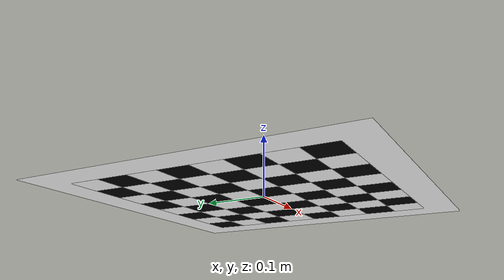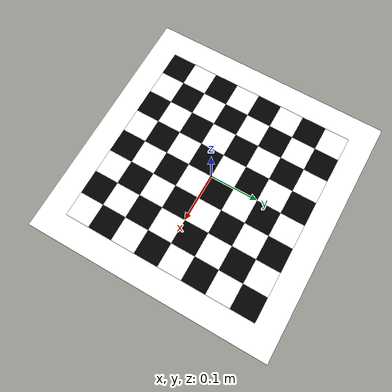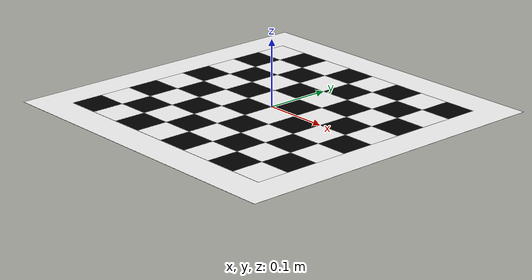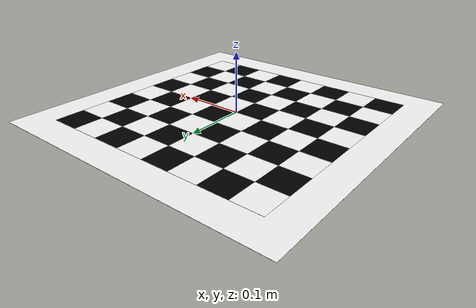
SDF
<?xml version="1.0"?>
<sdf version="1.4">
  <model name="checkerboard_8_8_0_05">
  <static>true</static>
  <link name="checkerboard_8_8_0_05_body">
      <visual name="checker_0_0">
        <pose>-0.17500000000000002 -0.17500000000000002 0 0 0 0</pose>
        <geometry>
          <box>
            <size>0.05 0.05 0.0002</size>
          </box>
        </geometry>
        <material>
          <ambient>0 0 0 1</ambient>
          <diffuse>0 0 0 1</diffuse>
          <specular>0 0 0 1</specular>
          <emissive>0 0 0 1</emissive>
        </material>
      </visual>
      <visual name="checker_0_1">
        <pose>-0.17500000000000002 -0.125 0 0 0 0</pose>
        <geometry>
          <box>
            <size>0.05 0.05 0.0002</size>
          </box>
        </geometry>
        <material>
          <ambient>1 1 1 1</ambient>
          <diffuse>1 1 1 1</diffuse>
          <specular>1 1 1 1</specular>
          <emissive>1 1 1 1</emissive>
        </material>
      </visual>
      <visual name="checker_0_2">
        <pose>-0.17500000000000002 -0.07500000000000001 0 0 0 0</pose>
        <geometry>
          <box>
            <size>0.05 0.05 0.0002</size>
          </box>
        </geometry>
        <material>
          <ambient>0 0 0 1</ambient>
          <diffuse>0 0 0 1</diffuse>
          <specular>0 0 0 1</specular>
          <emissive>0 0 0 1</emissive>
        </material>
      </visual>
      <visual name="checker_0_3">
        <pose>-0.17500000000000002 -0.024999999999999994 0 0 0 0</pose>
        <geometry>
          <box>
            <size>0.05 0.05 0.0002</size>
          </box>
        </geometry>
        <material>
          <ambient>1 1 1 1</ambient>
          <diffuse>1 1 1 1</diffuse>
          <specular>1 1 1 1</specular>
          <emissive>1 1 1 1</emissive>
        </material>
      </visual>
      <visual name="checker_0_4">
        <pose>-0.17500000000000002 0.024999999999999994 0 0 0 0</pose>
        <geometry>
          <box>
            <size>0.05 0.05 0.0002</size>
          </box>
        </geometry>
        <material>
          <ambient>0 0 0 1</ambient>
          <diffuse>0 0 0 1</diffuse>
          <specular>0 0 0 1</specular>
          <emissive>0 0 0 1</emissive>
        </material>
      </visual>
      <visual name="checker_0_5">
        <pose>-0.17500000000000002 0.07500000000000001 0 0 0 0</pose>
        <geometry>
          <box>
            <size>0.05 0.05 0.0002</size>
          </box>
        </geometry>
        <material>
          <ambient>1 1 1 1</ambient>
          <diffuse>1 1 1 1</diffuse>
          <specular>1 1 1 1</specular>
          <emissive>1 1 1 1</emissive>
        </material>
      </visual>
      <visual name="checker_0_6">
        <pose>-0.17500000000000002 0.12500000000000006 0 0 0 0</pose>
        <geometry>
          <box>
            <size>0.05 0.05 0.0002</size>
          </box>
        </geometry>
        <material>
          <ambient>0 0 0 1</ambient>
          <diffuse>0 0 0 1</diffuse>
          <specular>0 0 0 1</specular>
          <emissive>0 0 0 1</emissive>
        </material>
      </visual>
      <visual name="checker_0_7">
        <pose>-0.17500000000000002 0.17500000000000004 0 0 0 0</pose>
        <geometry>
          <box>
            <size>0.05 0.05 0.0002</size>
          </box>
        </geometry>
        <material>
          <ambient>1 1 1 1</ambient>
          <diffuse>1 1 1 1</diffuse>
          <specular>1 1 1 1</specular>
          <emissive>1 1 1 1</emissive>
        </material>
      </visual>
      <visual name="checker_1_0">
        <pose>-0.125 -0.17500000000000002 0 0 0 0</pose>
        <geometry>
          <box>
            <size>0.05 0.05 0.0002</size>
          </box>
        </geometry>
        <material>
          <ambient>1 1 1 1</ambient>
          <diffuse>1 1 1 1</diffuse>
          <specular>1 1 1 1</specular>
          <emissive>1 1 1 1</emissive>
        </material>
      </visual>
      <visual name="checker_1_1">
        <pose>-0.125 -0.125 0 0 0 0</pose>
        <geometry>
          <box>
            <size>0.05 0.05 0.0002</size>
          </box>
        </geometry>
        <material>
          <ambient>0 0 0 1</ambient>
          <diffuse>0 0 0 1</diffuse>
          <specular>0 0 0 1</specular>
          <emissive>0 0 0 1</emissive>
        </material>
      </visual>
      <visual name="checker_1_2">
        <pose>-0.125 -0.07500000000000001 0 0 0 0</pose>
        <geometry>
          <box>
            <size>0.05 0.05 0.0002</size>
          </box>
        </geometry>
        <material>
          <ambient>1 1 1 1</ambient>
          <diffuse>1 1 1 1</diffuse>
          <specular>1 1 1 1</specular>
          <emissive>1 1 1 1</emissive>
        </material>
      </visual>
      <visual name="checker_1_3">
        <pose>-0.125 -0.024999999999999994 0 0 0 0</pose>
        <geometry>
          <box>
            <size>0.05 0.05 0.0002</size>
          </box>
        </geometry>
        <material>
          <ambient>0 0 0 1</ambient>
          <diffuse>0 0 0 1</diffuse>
          <specular>0 0 0 1</specular>
          <emissive>0 0 0 1</emissive>
        </material>
      </visual>
      <visual name="checker_1_4">
        <pose>-0.125 0.024999999999999994 0 0 0 0</pose>
        <geometry>
          <box>
            <size>0.05 0.05 0.0002</size>
          </box>
        </geometry>
        <material>
          <ambient>1 1 1 1</ambient>
          <diffuse>1 1 1 1</diffuse>
          <specular>1 1 1 1</specular>
          <emissive>1 1 1 1</emissive>
        </material>
      </visual>
      <visual name="checker_1_5">
        <pose>-0.125 0.07500000000000001 0 0 0 0</pose>
        <geometry>
          <box>
            <size>0.05 0.05 0.0002</size>
          </box>
        </geometry>
        <material>
          <ambient>0 0 0 1</ambient>
          <diffuse>0 0 0 1</diffuse>
          <specular>0 0 0 1</specular>
          <emissive>0 0 0 1</emissive>
        </material>
      </visual>
      <visual name="checker_1_6">
        <pose>-0.125 0.12500000000000006 0 0 0 0</pose>
        <geometry>
          <box>
            <size>0.05 0.05 0.0002</size>
          </box>
        </geometry>
        <material>
          <ambient>1 1 1 1</ambient>
          <diffuse>1 1 1 1</diffuse>
          <specular>1 1 1 1</specular>
          <emissive>1 1 1 1</emissive>
        </material>
      </visual>
      <visual name="checker_1_7">
        <pose>-0.125 0.17500000000000004 0 0 0 0</pose>
        <geometry>
          <box>
            <size>0.05 0.05 0.0002</size>
          </box>
        </geometry>
        <material>
          <ambient>0 0 0 1</ambient>
          <diffuse>0 0 0 1</diffuse>
          <specular>0 0 0 1</specular>
          <emissive>0 0 0 1</emissive>
        </material>
      </visual>
      <visual name="checker_2_0">
        <pose>-0.07500000000000001 -0.17500000000000002 0 0 0 0</pose>
        <geometry>
          <box>
            <size>0.05 0.05 0.0002</size>
          </box>
        </geometry>
        <material>
          <ambient>0 0 0 1</ambient>
          <diffuse>0 0 0 1</diffuse>
          <specular>0 0 0 1</specular>
          <emissive>0 0 0 1</emissive>
        </material>
      </visual>
      <visual name="checker_2_1">
        <pose>-0.07500000000000001 -0.125 0 0 0 0</pose>
        <geometry>
          <box>
            <size>0.05 0.05 0.0002</size>
          </box>
        </geometry>
        <material>
          <ambient>1 1 1 1</ambient>
          <diffuse>1 1 1 1</diffuse>
          <specular>1 1 1 1</specular>
          <emissive>1 1 1 1</emissive>
        </material>
      </visual>
      <visual name="checker_2_2">
        <pose>-0.07500000000000001 -0.07500000000000001 0 0 0 0</pose>
        <geometry>
          <box>
            <size>0.05 0.05 0.0002</size>
          </box>
        </geometry>
        <material>
          <ambient>0 0 0 1</ambient>
          <diffuse>0 0 0 1</diffuse>
          <specular>0 0 0 1</specular>
          <emissive>0 0 0 1</emissive>
        </material>
      </visual>
      <visual name="checker_2_3">
        <pose>-0.07500000000000001 -0.024999999999999994 0 0 0 0</pose>
        <geometry>
          <box>
            <size>0.05 0.05 0.0002</size>
          </box>
        </geometry>
        <material>
          <ambient>1 1 1 1</ambient>
          <diffuse>1 1 1 1</diffuse>
          <specular>1 1 1 1</specular>
          <emissive>1 1 1 1</emissive>
        </material>
      </visual>
      <visual name="checker_2_4">
        <pose>-0.07500000000000001 0.024999999999999994 0 0 0 0</pose>
        <geometry>
          <box>
            <size>0.05 0.05 0.0002</size>
          </box>
        </geometry>
        <material>
          <ambient>0 0 0 1</ambient>
          <diffuse>0 0 0 1</diffuse>
          <specular>0 0 0 1</specular>
          <emissive>0 0 0 1</emissive>
        </material>
      </visual>
      <visual name="checker_2_5">
        <pose>-0.07500000000000001 0.07500000000000001 0 0 0 0</pose>
        <geometry>
          <box>
            <size>0.05 0.05 0.0002</size>
          </box>
        </geometry>
        <material>
          <ambient>1 1 1 1</ambient>
          <diffuse>1 1 1 1</diffuse>
          <specular>1 1 1 1</specular>
          <emissive>1 1 1 1</emissive>
        </material>
      </visual>
      <visual name="checker_2_6">
        <pose>-0.07500000000000001 0.12500000000000006 0 0 0 0</pose>
        <geometry>
          <box>
            <size>0.05 0.05 0.0002</size>
          </box>
        </geometry>
        <material>
          <ambient>0 0 0 1</ambient>
          <diffuse>0 0 0 1</diffuse>
          <specular>0 0 0 1</specular>
          <emissive>0 0 0 1</emissive>
        </material>
      </visual>
      <visual name="checker_2_7">
        <pose>-0.07500000000000001 0.17500000000000004 0 0 0 0</pose>
        <geometry>
          <box>
            <size>0.05 0.05 0.0002</size>
          </box>
        </geometry>
        <material>
          <ambient>1 1 1 1</ambient>
          <diffuse>1 1 1 1</diffuse>
          <specular>1 1 1 1</specular>
          <emissive>1 1 1 1</emissive>
        </material>
      </visual>
      <visual name="checker_3_0">
        <pose>-0.024999999999999994 -0.17500000000000002 0 0 0 0</pose>
        <geometry>
          <box>
            <size>0.05 0.05 0.0002</size>
          </box>
        </geometry>
        <material>
          <ambient>1 1 1 1</ambient>
          <diffuse>1 1 1 1</diffuse>
          <specular>1 1 1 1</specular>
          <emissive>1 1 1 1</emissive>
        </material>
      </visual>
      <visual name="checker_3_1">
        <pose>-0.024999999999999994 -0.125 0 0 0 0</pose>
        <geometry>
          <box>
            <size>0.05 0.05 0.0002</size>
          </box>
        </geometry>
        <material>
          <ambient>0 0 0 1</ambient>
          <diffuse>0 0 0 1</diffuse>
          <specular>0 0 0 1</specular>
          <emissive>0 0 0 1</emissive>
        </material>
      </visual>
      <visual name="checker_3_2">
        <pose>-0.024999999999999994 -0.07500000000000001 0 0 0 0</pose>
        <geometry>
          <box>
            <size>0.05 0.05 0.0002</size>
          </box>
        </geometry>
        <material>
          <ambient>1 1 1 1</ambient>
          <diffuse>1 1 1 1</diffuse>
          <specular>1 1 1 1</specular>
          <emissive>1 1 1 1</emissive>
        </material>
      </visual>
      <visual name="checker_3_3">
        <pose>-0.024999999999999994 -0.024999999999999994 0 0 0 0</pose>
        <geometry>
          <box>
            <size>0.05 0.05 0.0002</size>
          </box>
        </geometry>
        <material>
          <ambient>0 0 0 1</ambient>
          <diffuse>0 0 0 1</diffuse>
          <specular>0 0 0 1</specular>
          <emissive>0 0 0 1</emissive>
        </material>
      </visual>
      <visual name="checker_3_4">
        <pose>-0.024999999999999994 0.024999999999999994 0 0 0 0</pose>
        <geometry>
          <box>
            <size>0.05 0.05 0.0002</size>
          </box>
        </geometry>
        <material>
          <ambient>1 1 1 1</ambient>
          <diffuse>1 1 1 1</diffuse>
          <specular>1 1 1 1</specular>
          <emissive>1 1 1 1</emissive>
        </material>
      </visual>
      <visual name="checker_3_5">
        <pose>-0.024999999999999994 0.07500000000000001 0 0 0 0</pose>
        <geometry>
          <box>
            <size>0.05 0.05 0.0002</size>
          </box>
        </geometry>
        <material>
          <ambient>0 0 0 1</ambient>
          <diffuse>0 0 0 1</diffuse>
          <specular>0 0 0 1</specular>
          <emissive>0 0 0 1</emissive>
        </material>
      </visual>
      <visual name="checker_3_6">
        <pose>-0.024999999999999994 0.12500000000000006 0 0 0 0</pose>
        <geometry>
          <box>
            <size>0.05 0.05 0.0002</size>
          </box>
        </geometry>
        <material>
          <ambient>1 1 1 1</ambient>
          <diffuse>1 1 1 1</diffuse>
          <specular>1 1 1 1</specular>
          <emissive>1 1 1 1</emissive>
        </material>
      </visual>
      <visual name="checker_3_7">
        <pose>-0.024999999999999994 0.17500000000000004 0 0 0 0</pose>
        <geometry>
          <box>
            <size>0.05 0.05 0.0002</size>
          </box>
        </geometry>
        <material>
          <ambient>0 0 0 1</ambient>
          <diffuse>0 0 0 1</diffuse>
          <specular>0 0 0 1</specular>
          <emissive>0 0 0 1</emissive>
        </material>
      </visual>
      <visual name="checker_4_0">
        <pose>0.024999999999999994 -0.17500000000000002 0 0 0 0</pose>
        <geometry>
          <box>
            <size>0.05 0.05 0.0002</size>
          </box>
        </geometry>
        <material>
          <ambient>0 0 0 1</ambient>
          <diffuse>0 0 0 1</diffuse>
          <specular>0 0 0 1</specular>
          <emissive>0 0 0 1</emissive>
        </material>
      </visual>
      <visual name="checker_4_1">
        <pose>0.024999999999999994 -0.125 0 0 0 0</pose>
        <geometry>
          <box>
            <size>0.05 0.05 0.0002</size>
          </box>
        </geometry>
        <material>
          <ambient>1 1 1 1</ambient>
          <diffuse>1 1 1 1</diffuse>
          <specular>1 1 1 1</specular>
          <emissive>1 1 1 1</emissive>
        </material>
      </visual>
      <visual name="checker_4_2">
        <pose>0.024999999999999994 -0.07500000000000001 0 0 0 0</pose>
        <geometry>
          <box>
            <size>0.05 0.05 0.0002</size>
          </box>
        </geometry>
        <material>
          <ambient>0 0 0 1</ambient>
          <diffuse>0 0 0 1</diffuse>
          <specular>0 0 0 1</specular>
          <emissive>0 0 0 1</emissive>
        </material>
      </visual>
      <visual name="checker_4_3">
        <pose>0.024999999999999994 -0.024999999999999994 0 0 0 0</pose>
        <geometry>
          <box>
            <size>0.05 0.05 0.0002</size>
          </box>
        </geometry>
        <material>
          <ambient>1 1 1 1</ambient>
          <diffuse>1 1 1 1</diffuse>
          <specular>1 1 1 1</specular>
          <emissive>1 1 1 1</emissive>
        </material>
      </visual>
      <visual name="checker_4_4">
        <pose>0.024999999999999994 0.024999999999999994 0 0 0 0</pose>
        <geometry>
          <box>
            <size>0.05 0.05 0.0002</size>
          </box>
        </geometry>
        <material>
          <ambient>0 0 0 1</ambient>
          <diffuse>0 0 0 1</diffuse>
          <specular>0 0 0 1</specular>
          <emissive>0 0 0 1</emissive>
        </material>
      </visual>
      <visual name="checker_4_5">
        <pose>0.024999999999999994 0.07500000000000001 0 0 0 0</pose>
        <geometry>
          <box>
            <size>0.05 0.05 0.0002</size>
          </box>
        </geometry>
        <material>
          <ambient>1 1 1 1</ambient>
          <diffuse>1 1 1 1</diffuse>
          <specular>1 1 1 1</specular>
          <emissive>1 1 1 1</emissive>
        </material>
      </visual>
      <visual name="checker_4_6">
        <pose>0.024999999999999994 0.12500000000000006 0 0 0 0</pose>
        <geometry>
          <box>
            <size>0.05 0.05 0.0002</size>
          </box>
        </geometry>
        <material>
          <ambient>0 0 0 1</ambient>
          <diffuse>0 0 0 1</diffuse>
          <specular>0 0 0 1</specular>
          <emissive>0 0 0 1</emissive>
        </material>
      </visual>
      <visual name="checker_4_7">
        <pose>0.024999999999999994 0.17500000000000004 0 0 0 0</pose>
        <geometry>
          <box>
            <size>0.05 0.05 0.0002</size>
          </box>
        </geometry>
        <material>
          <ambient>1 1 1 1</ambient>
          <diffuse>1 1 1 1</diffuse>
          <specular>1 1 1 1</specular>
          <emissive>1 1 1 1</emissive>
        </material>
      </visual>
      <visual name="checker_5_0">
        <pose>0.07500000000000001 -0.17500000000000002 0 0 0 0</pose>
        <geometry>
          <box>
            <size>0.05 0.05 0.0002</size>
          </box>
        </geometry>
        <material>
          <ambient>1 1 1 1</ambient>
          <diffuse>1 1 1 1</diffuse>
          <specular>1 1 1 1</specular>
          <emissive>1 1 1 1</emissive>
        </material>
      </visual>
      <visual name="checker_5_1">
        <pose>0.07500000000000001 -0.125 0 0 0 0</pose>
        <geometry>
          <box>
            <size>0.05 0.05 0.0002</size>
          </box>
        </geometry>
        <material>
          <ambient>0 0 0 1</ambient>
          <diffuse>0 0 0 1</diffuse>
          <specular>0 0 0 1</specular>
          <emissive>0 0 0 1</emissive>
        </material>
      </visual>
      <visual name="checker_5_2">
        <pose>0.07500000000000001 -0.07500000000000001 0 0 0 0</pose>
        <geometry>
          <box>
            <size>0.05 0.05 0.0002</size>
          </box>
        </geometry>
        <material>
          <ambient>1 1 1 1</ambient>
          <diffuse>1 1 1 1</diffuse>
          <specular>1 1 1 1</specular>
          <emissive>1 1 1 1</emissive>
        </material>
      </visual>
      <visual name="checker_5_3">
        <pose>0.07500000000000001 -0.024999999999999994 0 0 0 0</pose>
        <geometry>
          <box>
            <size>0.05 0.05 0.0002</size>
          </box>
        </geometry>
        <material>
          <ambient>0 0 0 1</ambient>
          <diffuse>0 0 0 1</diffuse>
          <specular>0 0 0 1</specular>
          <emissive>0 0 0 1</emissive>
        </material>
      </visual>
      <visual name="checker_5_4">
        <pose>0.07500000000000001 0.024999999999999994 0 0 0 0</pose>
        <geometry>
          <box>
            <size>0.05 0.05 0.0002</size>
          </box>
        </geometry>
        <material>
          <ambient>1 1 1 1</ambient>
          <diffuse>1 1 1 1</diffuse>
          <specular>1 1 1 1</specular>
          <emissive>1 1 1 1</emissive>
        </material>
      </visual>
      <visual name="checker_5_5">
        <pose>0.07500000000000001 0.07500000000000001 0 0 0 0</pose>
        <geometry>
          <box>
            <size>0.05 0.05 0.0002</size>
          </box>
        </geometry>
        <material>
          <ambient>0 0 0 1</ambient>
          <diffuse>0 0 0 1</diffuse>
          <specular>0 0 0 1</specular>
          <emissive>0 0 0 1</emissive>
        </material>
      </visual>
      <visual name="checker_5_6">
        <pose>0.07500000000000001 0.12500000000000006 0 0 0 0</pose>
        <geometry>
          <box>
            <size>0.05 0.05 0.0002</size>
          </box>
        </geometry>
        <material>
          <ambient>1 1 1 1</ambient>
          <diffuse>1 1 1 1</diffuse>
          <specular>1 1 1 1</specular>
          <emissive>1 1 1 1</emissive>
        </material>
      </visual>
      <visual name="checker_5_7">
        <pose>0.07500000000000001 0.17500000000000004 0 0 0 0</pose>
        <geometry>
          <box>
            <size>0.05 0.05 0.0002</size>
          </box>
        </geometry>
        <material>
          <ambient>0 0 0 1</ambient>
          <diffuse>0 0 0 1</diffuse>
          <specular>0 0 0 1</specular>
          <emissive>0 0 0 1</emissive>
        </material>
      </visual>
      <visual name="checker_6_0">
        <pose>0.12500000000000006 -0.17500000000000002 0 0 0 0</pose>
        <geometry>
          <box>
            <size>0.05 0.05 0.0002</size>
          </box>
        </geometry>
        <material>
          <ambient>0 0 0 1</ambient>
          <diffuse>0 0 0 1</diffuse>
          <specular>0 0 0 1</specular>
          <emissive>0 0 0 1</emissive>
        </material>
      </visual>
      <visual name="checker_6_1">
        <pose>0.12500000000000006 -0.125 0 0 0 0</pose>
        <geometry>
          <box>
            <size>0.05 0.05 0.0002</size>
          </box>
        </geometry>
        <material>
          <ambient>1 1 1 1</ambient>
          <diffuse>1 1 1 1</diffuse>
          <specular>1 1 1 1</specular>
          <emissive>1 1 1 1</emissive>
        </material>
      </visual>
      <visual name="checker_6_2">
        <pose>0.12500000000000006 -0.07500000000000001 0 0 0 0</pose>
        <geometry>
          <box>
            <size>0.05 0.05 0.0002</size>
          </box>
        </geometry>
        <material>
          <ambient>0 0 0 1</ambient>
          <diffuse>0 0 0 1</diffuse>
          <specular>0 0 0 1</specular>
          <emissive>0 0 0 1</emissive>
        </material>
      </visual>
      <visual name="checker_6_3">
        <pose>0.12500000000000006 -0.024999999999999994 0 0 0 0</pose>
        <geometry>
          <box>
            <size>0.05 0.05 0.0002</size>
          </box>
        </geometry>
        <material>
          <ambient>1 1 1 1</ambient>
          <diffuse>1 1 1 1</diffuse>
          <specular>1 1 1 1</specular>
          <emissive>1 1 1 1</emissive>
        </material>
      </visual>
      <visual name="checker_6_4">
        <pose>0.12500000000000006 0.024999999999999994 0 0 0 0</pose>
        <geometry>
          <box>
            <size>0.05 0.05 0.0002</size>
          </box>
        </geometry>
        <material>
          <ambient>0 0 0 1</ambient>
          <diffuse>0 0 0 1</diffuse>
          <specular>0 0 0 1</specular>
          <emissive>0 0 0 1</emissive>
        </material>
      </visual>
      <visual name="checker_6_5">
        <pose>0.12500000000000006 0.07500000000000001 0 0 0 0</pose>
        <geometry>
          <box>
            <size>0.05 0.05 0.0002</size>
          </box>
        </geometry>
        <material>
          <ambient>1 1 1 1</ambient>
          <diffuse>1 1 1 1</diffuse>
          <specular>1 1 1 1</specular>
          <emissive>1 1 1 1</emissive>
        </material>
      </visual>
      <visual name="checker_6_6">
        <pose>0.12500000000000006 0.12500000000000006 0 0 0 0</pose>
        <geometry>
          <box>
            <size>0.05 0.05 0.0002</size>
          </box>
        </geometry>
        <material>
          <ambient>0 0 0 1</ambient>
          <diffuse>0 0 0 1</diffuse>
          <specular>0 0 0 1</specular>
          <emissive>0 0 0 1</emissive>
        </material>
      </visual>
      <visual name="checker_6_7">
        <pose>0.12500000000000006 0.17500000000000004 0 0 0 0</pose>
        <geometry>
          <box>
            <size>0.05 0.05 0.0002</size>
          </box>
        </geometry>
        <material>
          <ambient>1 1 1 1</ambient>
          <diffuse>1 1 1 1</diffuse>
          <specular>1 1 1 1</specular>
          <emissive>1 1 1 1</emissive>
        </material>
      </visual>
      <visual name="checker_7_0">
        <pose>0.17500000000000004 -0.17500000000000002 0 0 0 0</pose>
        <geometry>
          <box>
            <size>0.05 0.05 0.0002</size>
          </box>
        </geometry>
        <material>
          <ambient>1 1 1 1</ambient>
          <diffuse>1 1 1 1</diffuse>
          <specular>1 1 1 1</specular>
          <emissive>1 1 1 1</emissive>
        </material>
      </visual>
      <visual name="checker_7_1">
        <pose>0.17500000000000004 -0.125 0 0 0 0</pose>
        <geometry>
          <box>
            <size>0.05 0.05 0.0002</size>
          </box>
        </geometry>
        <material>
          <ambient>0 0 0 1</ambient>
          <diffuse>0 0 0 1</diffuse>
          <specular>0 0 0 1</specular>
          <emissive>0 0 0 1</emissive>
        </material>
      </visual>
      <visual name="checker_7_2">
        <pose>0.17500000000000004 -0.07500000000000001 0 0 0 0</pose>
        <geometry>
          <box>
            <size>0.05 0.05 0.0002</size>
          </box>
        </geometry>
        <material>
          <ambient>1 1 1 1</ambient>
          <diffuse>1 1 1 1</diffuse>
          <specular>1 1 1 1</specular>
          <emissive>1 1 1 1</emissive>
        </material>
      </visual>
      <visual name="checker_7_3">
        <pose>0.17500000000000004 -0.024999999999999994 0 0 0 0</pose>
        <geometry>
          <box>
            <size>0.05 0.05 0.0002</size>
          </box>
        </geometry>
        <material>
          <ambient>0 0 0 1</ambient>
          <diffuse>0 0 0 1</diffuse>
          <specular>0 0 0 1</specular>
          <emissive>0 0 0 1</emissive>
        </material>
      </visual>
      <visual name="checker_7_4">
        <pose>0.17500000000000004 0.024999999999999994 0 0 0 0</pose>
        <geometry>
          <box>
            <size>0.05 0.05 0.0002</size>
          </box>
        </geometry>
        <material>
          <ambient>1 1 1 1</ambient>
          <diffuse>1 1 1 1</diffuse>
          <specular>1 1 1 1</specular>
          <emissive>1 1 1 1</emissive>
        </material>
      </visual>
      <visual name="checker_7_5">
        <pose>0.17500000000000004 0.07500000000000001 0 0 0 0</pose>
        <geometry>
          <box>
            <size>0.05 0.05 0.0002</size>
          </box>
        </geometry>
        <material>
          <ambient>0 0 0 1</ambient>
          <diffuse>0 0 0 1</diffuse>
          <specular>0 0 0 1</specular>
          <emissive>0 0 0 1</emissive>
        </material>
      </visual>
      <visual name="checker_7_6">
        <pose>0.17500000000000004 0.12500000000000006 0 0 0 0</pose>
        <geometry>
          <box>
            <size>0.05 0.05 0.0002</size>
          </box>
        </geometry>
        <material>
          <ambient>1 1 1 1</ambient>
          <diffuse>1 1 1 1</diffuse>
          <specular>1 1 1 1</specular>
          <emissive>1 1 1 1</emissive>
        </material>
      </visual>
      <visual name="checker_7_7">
        <pose>0.17500000000000004 0.17500000000000004 0 0 0 0</pose>
        <geometry>
          <box>
            <size>0.05 0.05 0.0002</size>
          </box>
        </geometry>
        <material>
          <ambient>0 0 0 1</ambient>
          <diffuse>0 0 0 1</diffuse>
          <specular>0 0 0 1</specular>
          <emissive>0 0 0 1</emissive>
        </material>
      </visual>
      <visual name="checker_backdrop">
        <pose>0 0 0 0 0 0</pose>
        <geometry>
          <box>
            <size>0.5 0.5 0.0001</size>
          </box>
        </geometry>
        <material>
          <ambient>1 1 1 1</ambient>
          <diffuse>1 1 1 1</diffuse>
          <specular>1 1 1 1</specular>
          <emissive>1 1 1 1</emissive>
        </material>
      </visual>
    </link>
  </model>
</sdf>
